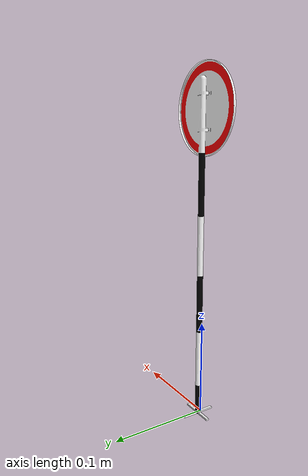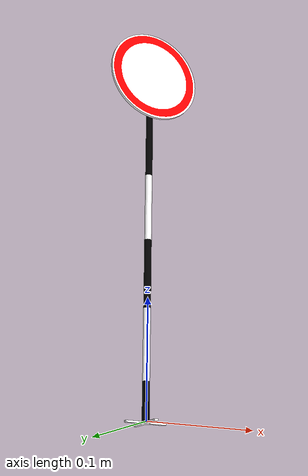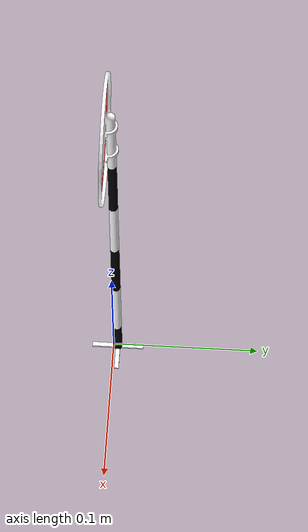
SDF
<?xml version='1.0'?>
<sdf version='1.7'>
  <model name='forbid'>
	<static>true</static>
    <link name='link_0'>

		<collision name="collision">
		<geometry>
			<mesh>
				<uri>model://forbid/mesh/model.dae</uri>
	            <scale>0.15 0.15 0.15</scale>
			</mesh>
		</geometry>
		</collision>

		<visual name="visual">
		<cast_shadows>true</cast_shadows>
		<geometry>
			<mesh>
				<uri>model://forbid/mesh/model.dae</uri>
	            <scale>0.15 0.15 0.15</scale>
			</mesh>
		</geometry>
		</visual>
    </link>
  </model>
</sdf>
